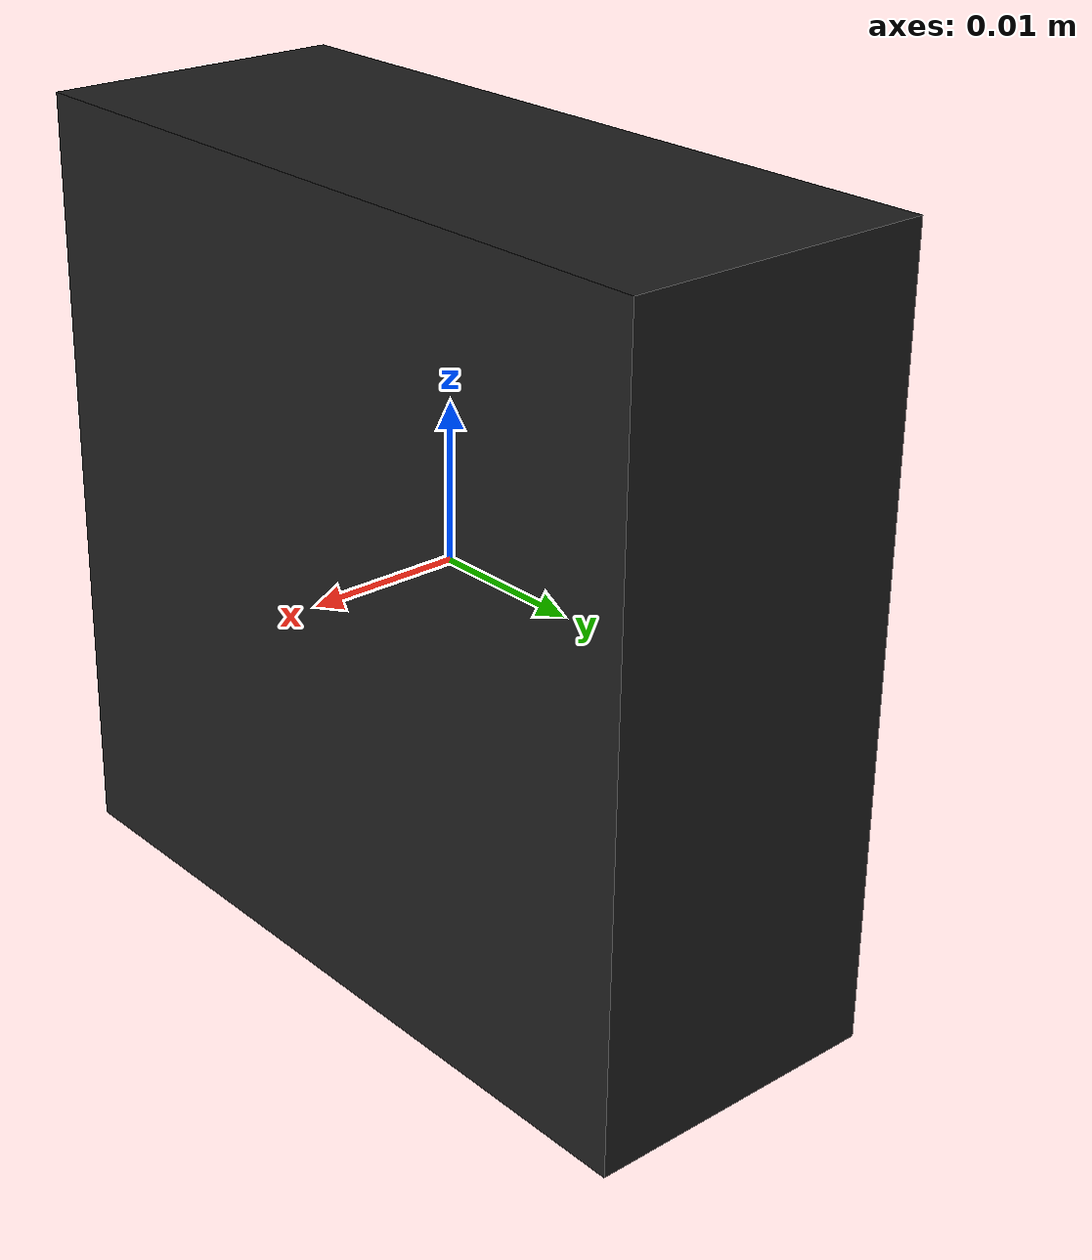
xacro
<?xml version="1.0"?>
<robot xmlns:xacro="http://www.ros.org/wiki/xacro">

  <link name='camera_link'>
    <inertial>
      <mass value="0.01" />
      <origin xyz="0 0 0" rpy="0 0 0"/>
      <inertia ixx="1e-6" ixy="0" ixz="0" iyy="1e-6" iyz="0" izz="1e-6" />
    </inertial>
    <visual>
      <geometry>
        <box size='0.02 0.05 0.05'/>
      </geometry>
    </visual>
    <collision>
      <geometry>
        <box size='0.02 0.05 0.05'/>
      </geometry>
    </collision>
  </link>

  <gazebo reference='camera_link'>
    <material>Gazebo/Black</material>
    <sensor type='camera' name='my_camera_sensor'>
      <update_rate>30.0</update_rate>
      <camera name='head'>
        <horizontal_fov>1.3962634</horizontal_fov>
        <image>
          <width>800</width>
          <height>800</height>
          <format>R8G8B8</format>
        </image>
        <clip>
          <near>0.02</near>
          <far>300</far>
        </clip>
      </camera>
      <plugin name='camera_controller' filename='libgazebo_ros_camera.so'>
        <alwaysOn>true</alwaysOn>
        <updateRate>0.0</updateRate>
        <cameraName>my_camera/rgb</cameraName>
        <imageTopicName>image_raw</imageTopicName>
        <cameraInfoTopicName>camera_info</cameraInfoTopicName>
        <frameName>camera_link</frameName>
      </plugin>
    </sensor>
  </gazebo>

</robot>
